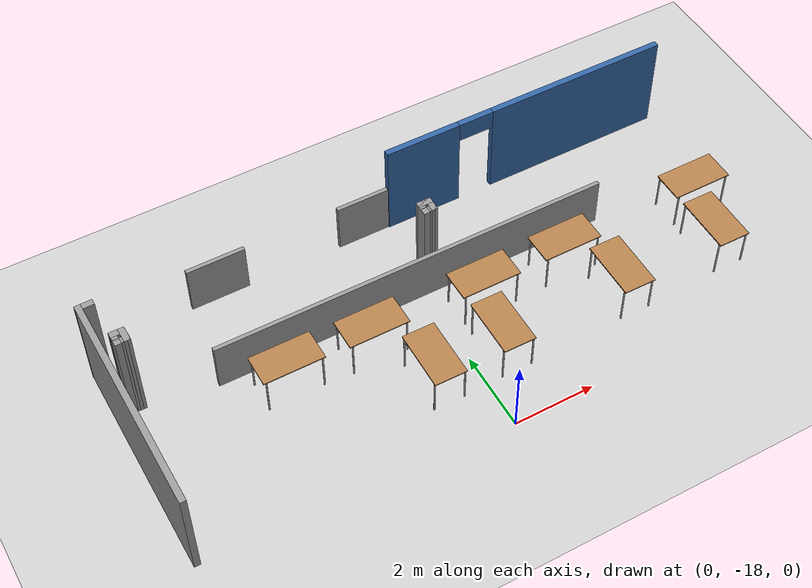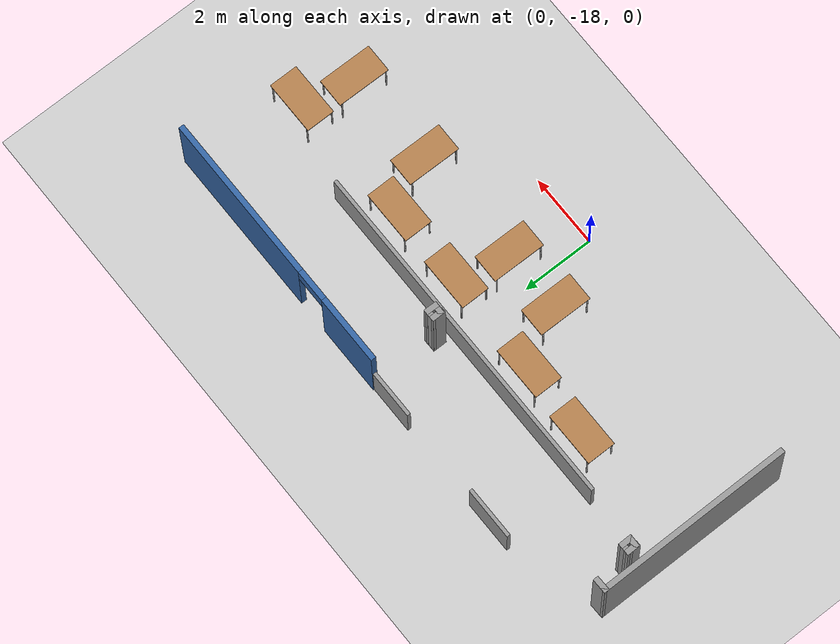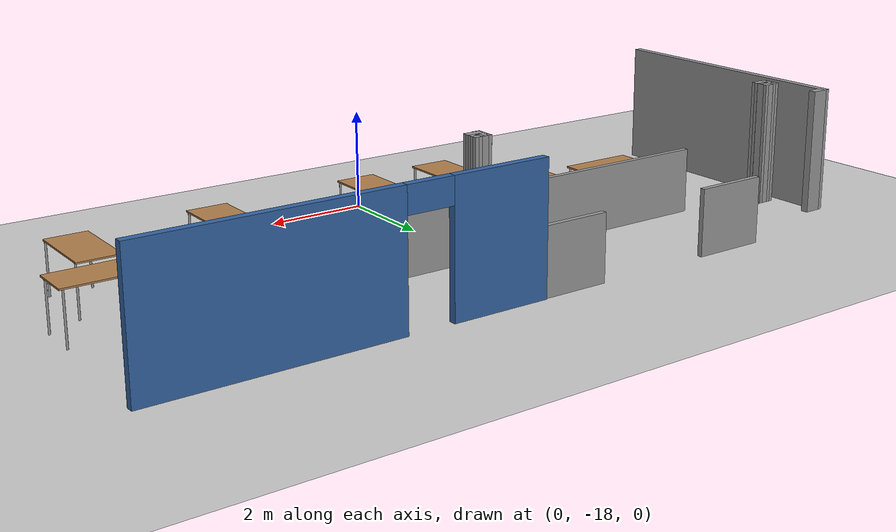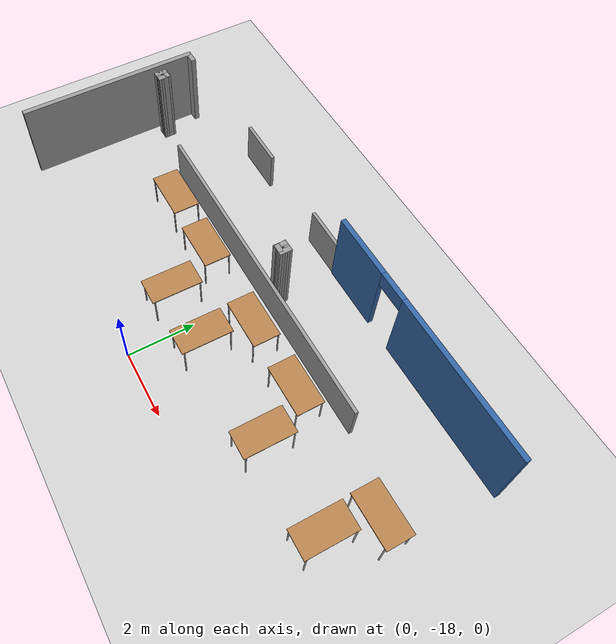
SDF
<sdf version="1.7">
 <world name="default">
  <model name="ground_plane">
   <static>1</static>
   <link name="link">
    <collision name="collision">
     <geometry><plane><normal>0 0 1</normal><size>100 100</size></plane></geometry>
     <surface>
      <contact><collide_bitmask>65535</collide_bitmask></contact>
      <friction><ode><mu>100</mu><mu2>50</mu2></ode></friction>
     </surface>
    </collision>
    <visual name="visual">
     <cast_shadows>0</cast_shadows>
     <geometry><plane><normal>0 0 1</normal><size>100 100</size></plane></geometry>
     <material>
      <script><uri>file://media/materials/scripts/gazebo.material</uri><name>Gazebo/Grey</name></script>
     </material>
    </visual>
   </link>
  </model>
  <model name="office_indoor_centered">
   <pose>8.45773 -9.64315 0 0 -0 0</pose>
   <link name="Wall_100">
    <collision name="Wall_100_Collision">
     <geometry><box><size>0.341623 0.15 2.5</size></box></geometry>
     <pose>0 0 1.25 0 -0 0</pose>
    </collision>
    <visual name="Wall_100_Visual">
     <pose>0 0 1.25 0 -0 0</pose>
     <geometry><box><size>0.341623 0.15 2.5</size></box></geometry>
     <material>
      <script><uri>file://media/materials/scripts/gazebo.material</uri><name>Gazebo/Grey</name></script>
      <ambient>1 1 1 1</ambient>
     </material>
     <meta><layer>0</layer></meta>
    </visual>
    <pose>-8.09905 -3.91466 0 0 -0 3.11175</pose>
   </link>
   <link name="Wall_133">
    <collision name="Wall_133_Collision">
     <geometry><box><size>1.45 0.1 1.3</size></box></geometry>
     <pose>0 0 0.65 0 -0 0</pose>
    </collision>
    <visual name="Wall_133_Visual">
     <pose>0 0 0.65 0 -0 0</pose>
     <geometry><box><size>1.45 0.1 1.3</size></box></geometry>
     <material>
      <script><uri>file://media/materials/scripts/gazebo.material</uri><name>Gazebo/Grey</name></script>
      <ambient>1 1 1 1</ambient>
     </material>
     <meta><layer>0</layer></meta>
    </visual>
    <pose>-12.5537 -1.93985 0 0 -0 0</pose>
   </link>
   <link name="Wall_135">
    <collision name="Wall_135_Collision">
     <geometry><box><size>1.44963 0.1 1.3</size></box></geometry>
     <pose>0 0 0.65 0 -0 0</pose>
    </collision>
    <visual name="Wall_135_Visual">
     <pose>0 0 0.65 0 -0 0</pose>
     <geometry><box><size>1.44963 0.1 1.3</size></box></geometry>
     <material>
      <script><uri>file://media/materials/scripts/gazebo.material</uri><name>Gazebo/Grey</name></script>
      <ambient>1 1 1 1</ambient>
     </material>
     <meta><layer>0</layer></meta>
    </visual>
    <pose>-8.72873 -1.94485 0 0 -0 3.14159</pose>
   </link>
   <link name="Wall_167">
    <collision name="Wall_167_Collision">
     <geometry><box><size>9.95 0.1 1.3</size></box></geometry>
     <pose>0 0 0.65 0 -0 0</pose>
    </collision>
    <visual name="Wall_167_Visual">
     <pose>0 0 0.65 0 -0 0</pose>
     <geometry><box><size>9.95 0.1 1.3</size></box></geometry>
     <material>
      <script><uri>file://media/materials/scripts/gazebo.material</uri><name>Gazebo/Grey</name></script>
      <ambient>1 1 1 1</ambient>
     </material>
     <meta><layer>0</layer></meta>
    </visual>
    <pose>-8.67673 -4.21685 0 0 -0 3.14159</pose>
   </link>
   <link name="Wall_31">
    <collision name="Wall_31_Collision">
     <geometry><box><size>5.5 0.15 2.5</size></box></geometry>
     <pose>0 0 1.25 0 -0 0</pose>
    </collision>
    <visual name="Wall_31_Visual">
     <pose>0 0 1.25 0 -0 0</pose>
     <geometry><box><size>5.5 0.15 2.5</size></box></geometry>
     <material>
      <script><uri>file://media/materials/scripts/gazebo.material</uri><name>Gazebo/Grey</name></script>
      <ambient>1 1 1 1</ambient>
     </material>
     <meta><layer>0</layer></meta>
    </visual>
    <pose>-15.925 -5.37515 0 0 -0 1.5708</pose>
   </link>
   <link name="Wall_34">
    <collision name="Wall_34_Collision">
     <geometry><box><size>0.421671 0.15 2.5</size></box></geometry>
     <pose>0 0 1.25 0 -0 0</pose>
    </collision>
    <visual name="Wall_34_Visual">
     <pose>0 0 1.25 0 -0 0</pose>
     <geometry><box><size>0.421671 0.15 2.5</size></box></geometry>
     <material>
      <script><uri>file://media/materials/scripts/gazebo.material</uri><name>Gazebo/Grey</name></script>
      <ambient>1 1 1 1</ambient>
     </material>
     <meta><layer>0</layer></meta>
    </visual>
    <pose>-15.7892 -2.69755 0 0 -0 0.019104</pose>
   </link>
   <link name="Wall_42">
    <pose>-4.37854 -1.94491 0 0 -0 -1.4e-05</pose>
    <visual name="Wall_42_Visual_0">
     <pose>-2.79066 0 1.25 0 -0 0</pose>
     <geometry><box><size>1.91868 0.15 2.5</size></box></geometry>
     <material>
      <script><uri>file://media/materials/scripts/gazebo.material</uri><name>Gazebo/Grey</name></script>
      <ambient>0.203922 0.396078 0.643137 1</ambient>
     </material>
     <meta><layer>0</layer></meta>
    </visual>
    <collision name="Wall_42_Collision_0">
     <geometry><box><size>1.91868 0.15 2.5</size></box></geometry>
     <pose>-2.79066 0 1.25 0 -0 0</pose>
    </collision>
    <visual name="Wall_42_Visual_1">
     <pose>1.40934 0 1.25 0 -0 0</pose>
     <geometry><box><size>4.68131 0.15 2.5</size></box></geometry>
     <material>
      <script><uri>file://media/materials/scripts/gazebo.material</uri><name>Gazebo/Grey</name></script>
      <ambient>0.203922 0.396078 0.643137 1</ambient>
     </material>
     <meta><layer>0</layer></meta>
    </visual>
    <collision name="Wall_42_Collision_1">
     <geometry><box><size>4.68131 0.15 2.5</size></box></geometry>
     <pose>1.40934 0 1.25 0 -0 0</pose>
    </collision>
    <visual name="Wall_42_Visual_2">
     <pose>-1.38132 0 2.25 0 -0 0</pose>
     <geometry><box><size>0.9 0.15 0.5</size></box></geometry>
     <material>
      <script><uri>file://media/materials/scripts/gazebo.material</uri><name>Gazebo/Grey</name></script>
      <ambient>0.203922 0.396078 0.643137 1</ambient>
     </material>
     <meta><layer>0</layer></meta>
    </visual>
    <collision name="Wall_42_Collision_2">
     <geometry><box><size>0.9 0.15 0.5</size></box></geometry>
     <pose>-1.38132 0 2.25 0 -0 0</pose>
    </collision>
   </link>
   <link name="Wall_92">
    <collision name="Wall_92_Collision">
     <geometry><box><size>0.382989 0.15 2.5</size></box></geometry>
     <pose>0 0 1.25 0 -0 0</pose>
    </collision>
    <visual name="Wall_92_Visual">
     <pose>0 0 1.25 0 -0 0</pose>
     <geometry><box><size>0.382989 0.15 2.5</size></box></geometry>
     <material>
      <script><uri>file://media/materials/scripts/gazebo.material</uri><name>Gazebo/Grey</name></script>
      <ambient>1 1 1 1</ambient>
     </material>
     <meta><layer>0</layer></meta>
    </visual>
    <pose>-15.559 -3.82104 0 0 -0 1.58307</pose>
   </link>
   <link name="Wall_93">
    <collision name="Wall_93_Collision">
     <geometry><box><size>0.358695 0.15 2.5</size></box></geometry>
     <pose>0 0 1.25 0 -0 0</pose>
    </collision>
    <visual name="Wall_93_Visual">
     <pose>0 0 1.25 0 -0 0</pose>
     <geometry><box><size>0.358695 0.15 2.5</size></box></geometry>
     <material>
      <script><uri>file://media/materials/scripts/gazebo.material</uri><name>Gazebo/Grey</name></script>
      <ambient>1 1 1 1</ambient>
     </material>
     <meta><layer>0</layer></meta>
    </visual>
    <pose>-15.4561 -3.70383 0 0 -0 0.006849</pose>
   </link>
   <link name="Wall_94">
    <collision name="Wall_94_Collision">
     <geometry><box><size>0.37729 0.15 2.5</size></box></geometry>
     <pose>0 0 1.25 0 -0 0</pose>
    </collision>
    <visual name="Wall_94_Visual">
     <pose>0 0 1.25 0 -0 0</pose>
     <geometry><box><size>0.37729 0.15 2.5</size></box></geometry>
     <material>
      <script><uri>file://media/materials/scripts/gazebo.material</uri><name>Gazebo/Grey</name></script>
      <ambient>1 1 1 1</ambient>
     </material>
     <meta><layer>0</layer></meta>
    </visual>
    <pose>-15.3503 -3.81675 0 0 -0 -1.55822</pose>
   </link>
   <link name="Wall_95">
    <collision name="Wall_95_Collision">
     <geometry><box><size>0.341585 0.15 2.5</size></box></geometry>
     <pose>0 0 1.25 0 -0 0</pose>
    </collision>
    <visual name="Wall_95_Visual">
     <pose>0 0 1.25 0 -0 0</pose>
     <geometry><box><size>0.341585 0.15 2.5</size></box></geometry>
     <material>
      <script><uri>file://media/materials/scripts/gazebo.material</uri><name>Gazebo/Grey</name></script>
      <ambient>1 1 1 1</ambient>
     </material>
     <meta><layer>0</layer></meta>
    </visual>
    <pose>-15.4446 -3.92824 0 0 -0 3.11921</pose>
   </link>
   <link name="Wall_97">
    <collision name="Wall_97_Collision">
     <geometry><box><size>0.380131 0.15 2.5</size></box></geometry>
     <pose>0 0 1.25 0 -0 0</pose>
    </collision>
    <visual name="Wall_97_Visual">
     <pose>0 0 1.25 0 -0 0</pose>
     <geometry><box><size>0.380131 0.15 2.5</size></box></geometry>
     <material>
      <script><uri>file://media/materials/scripts/gazebo.material</uri><name>Gazebo/Grey</name></script>
      <ambient>1 1 1 1</ambient>
     </material>
     <meta><layer>0</layer></meta>
    </visual>
    <pose>-8.21054 -3.81818 0 0 -0 1.5708</pose>
   </link>
   <link name="Wall_98">
    <collision name="Wall_98_Collision">
     <geometry><box><size>0.361568 0.15 2.5</size></box></geometry>
     <pose>0 0 1.25 0 -0 0</pose>
    </collision>
    <visual name="Wall_98_Visual">
     <pose>0 0 1.25 0 -0 0</pose>
     <geometry><box><size>0.361568 0.15 2.5</size></box></geometry>
     <material>
      <script><uri>file://media/materials/scripts/gazebo.material</uri><name>Gazebo/Grey</name></script>
      <ambient>1 1 1 1</ambient>
     </material>
     <meta><layer>0</layer></meta>
    </visual>
    <pose>-8.10476 -3.70168 0 0 -0 0.013513</pose>
   </link>
   <link name="Wall_99">
    <collision name="Wall_99_Collision">
     <geometry><box><size>0.367384 0.15 2.5</size></box></geometry>
     <pose>0 0 1.25 0 -0 0</pose>
    </collision>
    <visual name="Wall_99_Visual">
     <pose>0 0 1.25 0 -0 0</pose>
     <geometry><box><size>0.367384 0.15 2.5</size></box></geometry>
     <material>
      <script><uri>file://media/materials/scripts/gazebo.material</uri><name>Gazebo/Grey</name></script>
      <ambient>1 1 1 1</ambient>
     </material>
     <meta><layer>0</layer></meta>
    </visual>
    <pose>-8.00113 -3.80889 0 0 -0 -1.59053</pose>
   </link>
   <static>1</static>
  </model>
  <model name="table_2">
   <static>1</static>
   <link name="link">
    <collision name="surface">
     <pose>0 0 1 0 -0 0</pose>
     <geometry><box><size>1.5 0.8 0.03</size></box></geometry>
     <surface><friction><ode><mu>0.6</mu><mu2>0.6</mu2></ode></friction></surface>
    </collision>
    <visual name="visual1">
     <pose>0 0 1 0 -0 0</pose>
     <geometry><box><size>1.5 0.8 0.03</size></box></geometry>
     <material>
      <script><uri>file://media/materials/scripts/gazebo.material</uri><name>Gazebo/Wood</name></script>
     </material>
    </visual>
    <collision name="collision_front_left_leg">
     <pose>0.68 0.38 0.5 0 -0 0</pose>
     <geometry><cylinder><radius>0.02</radius><length>1</length></cylinder></geometry>
    </collision>
    <visual name="visual_front_left_leg">
     <pose>0.68 0.38 0.5 0 -0 0</pose>
     <geometry><cylinder><radius>0.02</radius><length>1</length></cylinder></geometry>
     <material>
      <script><uri>file://media/materials/scripts/gazebo.material</uri><name>Gazebo/Grey</name></script>
     </material>
    </visual>
    <collision name="collision_front_right_leg">
     <pose>0.68 -0.38 0.5 0 -0 0</pose>
     <geometry><cylinder><radius>0.02</radius><length>1</length></cylinder></geometry>
    </collision>
    <visual name="visual_front_right_leg">
     <pose>0.68 -0.38 0.5 0 -0 0</pose>
     <geometry><cylinder><radius>0.02</radius><length>1</length></cylinder></geometry>
     <material>
      <script><uri>file://media/materials/scripts/gazebo.material</uri><name>Gazebo/Grey</name></script>
     </material>
    </visual>
    <collision name="collision_back_right_leg">
     <pose>-0.68 -0.38 0.5 0 -0 0</pose>
     <geometry><cylinder><radius>0.02</radius><length>1</length></cylinder></geometry>
    </collision>
    <visual name="visual_back_right_leg">
     <pose>-0.68 -0.38 0.5 0 -0 0</pose>
     <geometry><cylinder><radius>0.02</radius><length>1</length></cylinder></geometry>
     <material>
      <script><uri>file://media/materials/scripts/gazebo.material</uri><name>Gazebo/Grey</name></script>
     </material>
    </visual>
    <collision name="collision_back_left_leg">
     <pose>-0.68 0.38 0.5 0 -0 0</pose>
     <geometry><cylinder><radius>0.02</radius><length>1</length></cylinder></geometry>
    </collision>
    <visual name="visual_back_left_leg">
     <pose>-0.68 0.38 0.5 0 -0 0</pose>
     <geometry><cylinder><radius>0.02</radius><length>1</length></cylinder></geometry>
     <material>
      <script><uri>file://media/materials/scripts/gazebo.material</uri><name>Gazebo/Grey</name></script>
     </material>
    </visual>
   </link>
   <pose>-3.82224 -14.6388 0 0 -0 0</pose>
  </model>
  <model name="table_3">
   <static>1</static>
   <link name="link">
    <collision name="surface">
     <pose>0 0 1 0 -0 0</pose>
     <geometry><box><size>1.5 0.8 0.03</size></box></geometry>
     <surface><friction><ode><mu>0.6</mu><mu2>0.6</mu2></ode></friction></surface>
    </collision>
    <visual name="visual1">
     <pose>0 0 1 0 -0 0</pose>
     <geometry><box><size>1.5 0.8 0.03</size></box></geometry>
     <material>
      <script><uri>file://media/materials/scripts/gazebo.material</uri><name>Gazebo/Wood</name></script>
     </material>
    </visual>
    <collision name="collision_front_left_leg">
     <pose>0.68 0.38 0.5 0 -0 0</pose>
     <geometry><cylinder><radius>0.02</radius><length>1</length></cylinder></geometry>
    </collision>
    <visual name="visual_front_left_leg">
     <pose>0.68 0.38 0.5 0 -0 0</pose>
     <geometry><cylinder><radius>0.02</radius><length>1</length></cylinder></geometry>
     <material>
      <script><uri>file://media/materials/scripts/gazebo.material</uri><name>Gazebo/Grey</name></script>
     </material>
    </visual>
    <collision name="collision_front_right_leg">
     <pose>0.68 -0.38 0.5 0 -0 0</pose>
     <geometry><cylinder><radius>0.02</radius><length>1</length></cylinder></geometry>
    </collision>
    <visual name="visual_front_right_leg">
     <pose>0.68 -0.38 0.5 0 -0 0</pose>
     <geometry><cylinder><radius>0.02</radius><length>1</length></cylinder></geometry>
     <material>
      <script><uri>file://media/materials/scripts/gazebo.material</uri><name>Gazebo/Grey</name></script>
     </material>
    </visual>
    <collision name="collision_back_right_leg">
     <pose>-0.68 -0.38 0.5 0 -0 0</pose>
     <geometry><cylinder><radius>0.02</radius><length>1</length></cylinder></geometry>
    </collision>
    <visual name="visual_back_right_leg">
     <pose>-0.68 -0.38 0.5 0 -0 0</pose>
     <geometry><cylinder><radius>0.02</radius><length>1</length></cylinder></geometry>
     <material>
      <script><uri>file://media/materials/scripts/gazebo.material</uri><name>Gazebo/Grey</name></script>
     </material>
    </visual>
    <collision name="collision_back_left_leg">
     <pose>-0.68 0.38 0.5 0 -0 0</pose>
     <geometry><cylinder><radius>0.02</radius><length>1</length></cylinder></geometry>
    </collision>
    <visual name="visual_back_left_leg">
     <pose>-0.68 0.38 0.5 0 -0 0</pose>
     <geometry><cylinder><radius>0.02</radius><length>1</length></cylinder></geometry>
     <material>
      <script><uri>file://media/materials/scripts/gazebo.material</uri><name>Gazebo/Grey</name></script>
     </material>
    </visual>
   </link>
   <pose>-1.75125 -14.685 0 0 -0 0</pose>
  </model>
  <model name="table_4">
   <static>1</static>
   <link name="link">
    <collision name="surface">
     <pose>0 0 1 0 -0 0</pose>
     <geometry><box><size>1.5 0.8 0.03</size></box></geometry>
     <surface><friction><ode><mu>0.6</mu><mu2>0.6</mu2></ode></friction></surface>
    </collision>
    <visual name="visual1">
     <pose>0 0 1 0 -0 0</pose>
     <geometry><box><size>1.5 0.8 0.03</size></box></geometry>
     <material>
      <script><uri>file://media/materials/scripts/gazebo.material</uri><name>Gazebo/Wood</name></script>
     </material>
    </visual>
    <collision name="collision_front_left_leg">
     <pose>0.68 0.38 0.5 0 -0 0</pose>
     <geometry><cylinder><radius>0.02</radius><length>1</length></cylinder></geometry>
    </collision>
    <visual name="visual_front_left_leg">
     <pose>0.68 0.38 0.5 0 -0 0</pose>
     <geometry><cylinder><radius>0.02</radius><length>1</length></cylinder></geometry>
     <material>
      <script><uri>file://media/materials/scripts/gazebo.material</uri><name>Gazebo/Grey</name></script>
     </material>
    </visual>
    <collision name="collision_front_right_leg">
     <pose>0.68 -0.38 0.5 0 -0 0</pose>
     <geometry><cylinder><radius>0.02</radius><length>1</length></cylinder></geometry>
    </collision>
    <visual name="visual_front_right_leg">
     <pose>0.68 -0.38 0.5 0 -0 0</pose>
     <geometry><cylinder><radius>0.02</radius><length>1</length></cylinder></geometry>
     <material>
      <script><uri>file://media/materials/scripts/gazebo.material</uri><name>Gazebo/Grey</name></script>
     </material>
    </visual>
    <collision name="collision_back_right_leg">
     <pose>-0.68 -0.38 0.5 0 -0 0</pose>
     <geometry><cylinder><radius>0.02</radius><length>1</length></cylinder></geometry>
    </collision>
    <visual name="visual_back_right_leg">
     <pose>-0.68 -0.38 0.5 0 -0 0</pose>
     <geometry><cylinder><radius>0.02</radius><length>1</length></cylinder></geometry>
     <material>
      <script><uri>file://media/materials/scripts/gazebo.material</uri><name>Gazebo/Grey</name></script>
     </material>
    </visual>
    <collision name="collision_back_left_leg">
     <pose>-0.68 0.38 0.5 0 -0 0</pose>
     <geometry><cylinder><radius>0.02</radius><length>1</length></cylinder></geometry>
    </collision>
    <visual name="visual_back_left_leg">
     <pose>-0.68 0.38 0.5 0 -0 0</pose>
     <geometry><cylinder><radius>0.02</radius><length>1</length></cylinder></geometry>
     <material>
      <script><uri>file://media/materials/scripts/gazebo.material</uri><name>Gazebo/Grey</name></script>
     </material>
    </visual>
   </link>
   <pose>1.10768 -14.7151 0 0 -0 0</pose>
  </model>
  <model name="table_5">
   <static>1</static>
   <link name="link">
    <collision name="surface">
     <pose>0 0 1 0 -0 0</pose>
     <geometry><box><size>1.5 0.8 0.03</size></box></geometry>
     <surface><friction><ode><mu>0.6</mu><mu2>0.6</mu2></ode></friction></surface>
    </collision>
    <visual name="visual1">
     <pose>0 0 1 0 -0 0</pose>
     <geometry><box><size>1.5 0.8 0.03</size></box></geometry>
     <material>
      <script><uri>file://media/materials/scripts/gazebo.material</uri><name>Gazebo/Wood</name></script>
     </material>
    </visual>
    <collision name="collision_front_left_leg">
     <pose>0.68 0.38 0.5 0 -0 0</pose>
     <geometry><cylinder><radius>0.02</radius><length>1</length></cylinder></geometry>
    </collision>
    <visual name="visual_front_left_leg">
     <pose>0.68 0.38 0.5 0 -0 0</pose>
     <geometry><cylinder><radius>0.02</radius><length>1</length></cylinder></geometry>
     <material>
      <script><uri>file://media/materials/scripts/gazebo.material</uri><name>Gazebo/Grey</name></script>
     </material>
    </visual>
    <collision name="collision_front_right_leg">
     <pose>0.68 -0.38 0.5 0 -0 0</pose>
     <geometry><cylinder><radius>0.02</radius><length>1</length></cylinder></geometry>
    </collision>
    <visual name="visual_front_right_leg">
     <pose>0.68 -0.38 0.5 0 -0 0</pose>
     <geometry><cylinder><radius>0.02</radius><length>1</length></cylinder></geometry>
     <material>
      <script><uri>file://media/materials/scripts/gazebo.material</uri><name>Gazebo/Grey</name></script>
     </material>
    </visual>
    <collision name="collision_back_right_leg">
     <pose>-0.68 -0.38 0.5 0 -0 0</pose>
     <geometry><cylinder><radius>0.02</radius><length>1</length></cylinder></geometry>
    </collision>
    <visual name="visual_back_right_leg">
     <pose>-0.68 -0.38 0.5 0 -0 0</pose>
     <geometry><cylinder><radius>0.02</radius><length>1</length></cylinder></geometry>
     <material>
      <script><uri>file://media/materials/scripts/gazebo.material</uri><name>Gazebo/Grey</name></script>
     </material>
    </visual>
    <collision name="collision_back_left_leg">
     <pose>-0.68 0.38 0.5 0 -0 0</pose>
     <geometry><cylinder><radius>0.02</radius><length>1</length></cylinder></geometry>
    </collision>
    <visual name="visual_back_left_leg">
     <pose>-0.68 0.38 0.5 0 -0 0</pose>
     <geometry><cylinder><radius>0.02</radius><length>1</length></cylinder></geometry>
     <material>
      <script><uri>file://media/materials/scripts/gazebo.material</uri><name>Gazebo/Grey</name></script>
     </material>
    </visual>
   </link>
   <pose>3.29963 -14.6952 0 0 -0 0</pose>
  </model>
  <model name="table_6">
   <static>1</static>
   <link name="link">
    <collision name="surface">
     <pose>0 0 1 0 -0 0</pose>
     <geometry><box><size>1.5 0.8 0.03</size></box></geometry>
     <surface><friction><ode><mu>0.6</mu><mu2>0.6</mu2></ode></friction></surface>
    </collision>
    <visual name="visual1">
     <pose>0 0 1 0 -0 0</pose>
     <geometry><box><size>1.5 0.8 0.03</size></box></geometry>
     <material>
      <script><uri>file://media/materials/scripts/gazebo.material</uri><name>Gazebo/Wood</name></script>
     </material>
    </visual>
    <collision name="collision_front_left_leg">
     <pose>0.68 0.38 0.5 0 -0 0</pose>
     <geometry><cylinder><radius>0.02</radius><length>1</length></cylinder></geometry>
    </collision>
    <visual name="visual_front_left_leg">
     <pose>0.68 0.38 0.5 0 -0 0</pose>
     <geometry><cylinder><radius>0.02</radius><length>1</length></cylinder></geometry>
     <material>
      <script><uri>file://media/materials/scripts/gazebo.material</uri><name>Gazebo/Grey</name></script>
     </material>
    </visual>
    <collision name="collision_front_right_leg">
     <pose>0.68 -0.38 0.5 0 -0 0</pose>
     <geometry><cylinder><radius>0.02</radius><length>1</length></cylinder></geometry>
    </collision>
    <visual name="visual_front_right_leg">
     <pose>0.68 -0.38 0.5 0 -0 0</pose>
     <geometry><cylinder><radius>0.02</radius><length>1</length></cylinder></geometry>
     <material>
      <script><uri>file://media/materials/scripts/gazebo.material</uri><name>Gazebo/Grey</name></script>
     </material>
    </visual>
    <collision name="collision_back_right_leg">
     <pose>-0.68 -0.38 0.5 0 -0 0</pose>
     <geometry><cylinder><radius>0.02</radius><length>1</length></cylinder></geometry>
    </collision>
    <visual name="visual_back_right_leg">
     <pose>-0.68 -0.38 0.5 0 -0 0</pose>
     <geometry><cylinder><radius>0.02</radius><length>1</length></cylinder></geometry>
     <material>
      <script><uri>file://media/materials/scripts/gazebo.material</uri><name>Gazebo/Grey</name></script>
     </material>
    </visual>
    <collision name="collision_back_left_leg">
     <pose>-0.68 0.38 0.5 0 -0 0</pose>
     <geometry><cylinder><radius>0.02</radius><length>1</length></cylinder></geometry>
    </collision>
    <visual name="visual_back_left_leg">
     <pose>-0.68 0.38 0.5 0 -0 0</pose>
     <geometry><cylinder><radius>0.02</radius><length>1</length></cylinder></geometry>
     <material>
      <script><uri>file://media/materials/scripts/gazebo.material</uri><name>Gazebo/Grey</name></script>
     </material>
    </visual>
   </link>
   <pose>7.01892 -14.5885 0 0 -0 0</pose>
  </model>
  <model name="table_26_clone_16">
   <static>1</static>
   <link name="link">
    <collision name="surface">
     <pose>0 0 1 0 -0 0</pose>
     <geometry><box><size>1.5 0.8 0.03</size></box></geometry>
     <surface><friction><ode><mu>0.6</mu><mu2>0.6</mu2></ode></friction></surface>
    </collision>
    <visual name="visual1">
     <pose>0 0 1 0 -0 0</pose>
     <geometry><box><size>1.5 0.8 0.03</size></box></geometry>
     <material>
      <script><uri>file://media/materials/scripts/gazebo.material</uri><name>Gazebo/Wood</name></script>
     </material>
    </visual>
    <collision name="collision_front_left_leg">
     <pose>0.68 0.38 0.5 0 -0 0</pose>
     <geometry><cylinder><radius>0.02</radius><length>1</length></cylinder></geometry>
    </collision>
    <visual name="visual_front_left_leg">
     <pose>0.68 0.38 0.5 0 -0 0</pose>
     <geometry><cylinder><radius>0.02</radius><length>1</length></cylinder></geometry>
     <material>
      <script><uri>file://media/materials/scripts/gazebo.material</uri><name>Gazebo/Grey</name></script>
     </material>
    </visual>
    <collision name="collision_front_right_leg">
     <pose>0.68 -0.38 0.5 0 -0 0</pose>
     <geometry><cylinder><radius>0.02</radius><length>1</length></cylinder></geometry>
    </collision>
    <visual name="visual_front_right_leg">
     <pose>0.68 -0.38 0.5 0 -0 0</pose>
     <geometry><cylinder><radius>0.02</radius><length>1</length></cylinder></geometry>
     <material>
      <script><uri>file://media/materials/scripts/gazebo.material</uri><name>Gazebo/Grey</name></script>
     </material>
    </visual>
    <collision name="collision_back_right_leg">
     <pose>-0.68 -0.38 0.5 0 -0 0</pose>
     <geometry><cylinder><radius>0.02</radius><length>1</length></cylinder></geometry>
    </collision>
    <visual name="visual_back_right_leg">
     <pose>-0.68 -0.38 0.5 0 -0 0</pose>
     <geometry><cylinder><radius>0.02</radius><length>1</length></cylinder></geometry>
     <material>
      <script><uri>file://media/materials/scripts/gazebo.material</uri><name>Gazebo/Grey</name></script>
     </material>
    </visual>
    <collision name="collision_back_left_leg">
     <pose>-0.68 0.38 0.5 0 -0 0</pose>
     <geometry><cylinder><radius>0.02</radius><length>1</length></cylinder></geometry>
    </collision>
    <visual name="visual_back_left_leg">
     <pose>-0.68 0.38 0.5 0 -0 0</pose>
     <geometry><cylinder><radius>0.02</radius><length>1</length></cylinder></geometry>
     <material>
      <script><uri>file://media/materials/scripts/gazebo.material</uri><name>Gazebo/Grey</name></script>
     </material>
    </visual>
   </link>
   <pose>6.68534 -15.96 0 0 0 -1.57974</pose>
  </model>
  <model name="table_26_clone_19">
   <static>1</static>
   <link name="link">
    <collision name="surface">
     <pose>0 0 1 0 -0 0</pose>
     <geometry><box><size>1.5 0.8 0.03</size></box></geometry>
     <surface><friction><ode><mu>0.6</mu><mu2>0.6</mu2></ode></friction></surface>
    </collision>
    <visual name="visual1">
     <pose>0 0 1 0 -0 0</pose>
     <geometry><box><size>1.5 0.8 0.03</size></box></geometry>
     <material>
      <script><uri>file://media/materials/scripts/gazebo.material</uri><name>Gazebo/Wood</name></script>
     </material>
    </visual>
    <collision name="collision_front_left_leg">
     <pose>0.68 0.38 0.5 0 -0 0</pose>
     <geometry><cylinder><radius>0.02</radius><length>1</length></cylinder></geometry>
    </collision>
    <visual name="visual_front_left_leg">
     <pose>0.68 0.38 0.5 0 -0 0</pose>
     <geometry><cylinder><radius>0.02</radius><length>1</length></cylinder></geometry>
     <material>
      <script><uri>file://media/materials/scripts/gazebo.material</uri><name>Gazebo/Grey</name></script>
     </material>
    </visual>
    <collision name="collision_front_right_leg">
     <pose>0.68 -0.38 0.5 0 -0 0</pose>
     <geometry><cylinder><radius>0.02</radius><length>1</length></cylinder></geometry>
    </collision>
    <visual name="visual_front_right_leg">
     <pose>0.68 -0.38 0.5 0 -0 0</pose>
     <geometry><cylinder><radius>0.02</radius><length>1</length></cylinder></geometry>
     <material>
      <script><uri>file://media/materials/scripts/gazebo.material</uri><name>Gazebo/Grey</name></script>
     </material>
    </visual>
    <collision name="collision_back_right_leg">
     <pose>-0.68 -0.38 0.5 0 -0 0</pose>
     <geometry><cylinder><radius>0.02</radius><length>1</length></cylinder></geometry>
    </collision>
    <visual name="visual_back_right_leg">
     <pose>-0.68 -0.38 0.5 0 -0 0</pose>
     <geometry><cylinder><radius>0.02</radius><length>1</length></cylinder></geometry>
     <material>
      <script><uri>file://media/materials/scripts/gazebo.material</uri><name>Gazebo/Grey</name></script>
     </material>
    </visual>
    <collision name="collision_back_left_leg">
     <pose>-0.68 0.38 0.5 0 -0 0</pose>
     <geometry><cylinder><radius>0.02</radius><length>1</length></cylinder></geometry>
    </collision>
    <visual name="visual_back_left_leg">
     <pose>-0.68 0.38 0.5 0 -0 0</pose>
     <geometry><cylinder><radius>0.02</radius><length>1</length></cylinder></geometry>
     <material>
      <script><uri>file://media/materials/scripts/gazebo.material</uri><name>Gazebo/Grey</name></script>
     </material>
    </visual>
   </link>
   <pose>4.0033 -16.0331 0 0 0 -1.57974</pose>
  </model>
  <model name="table_26_clone_20">
   <static>1</static>
   <link name="link">
    <collision name="surface">
     <pose>0 0 1 0 -0 0</pose>
     <geometry><box><size>1.5 0.8 0.03</size></box></geometry>
     <surface><friction><ode><mu>0.6</mu><mu2>0.6</mu2></ode></friction></surface>
    </collision>
    <visual name="visual1">
     <pose>0 0 1 0 -0 0</pose>
     <geometry><box><size>1.5 0.8 0.03</size></box></geometry>
     <material>
      <script><uri>file://media/materials/scripts/gazebo.material</uri><name>Gazebo/Wood</name></script>
     </material>
    </visual>
    <collision name="collision_front_left_leg">
     <pose>0.68 0.38 0.5 0 -0 0</pose>
     <geometry><cylinder><radius>0.02</radius><length>1</length></cylinder></geometry>
    </collision>
    <visual name="visual_front_left_leg">
     <pose>0.68 0.38 0.5 0 -0 0</pose>
     <geometry><cylinder><radius>0.02</radius><length>1</length></cylinder></geometry>
     <material>
      <script><uri>file://media/materials/scripts/gazebo.material</uri><name>Gazebo/Grey</name></script>
     </material>
    </visual>
    <collision name="collision_front_right_leg">
     <pose>0.68 -0.38 0.5 0 -0 0</pose>
     <geometry><cylinder><radius>0.02</radius><length>1</length></cylinder></geometry>
    </collision>
    <visual name="visual_front_right_leg">
     <pose>0.68 -0.38 0.5 0 -0 0</pose>
     <geometry><cylinder><radius>0.02</radius><length>1</length></cylinder></geometry>
     <material>
      <script><uri>file://media/materials/scripts/gazebo.material</uri><name>Gazebo/Grey</name></script>
     </material>
    </visual>
    <collision name="collision_back_right_leg">
     <pose>-0.68 -0.38 0.5 0 -0 0</pose>
     <geometry><cylinder><radius>0.02</radius><length>1</length></cylinder></geometry>
    </collision>
    <visual name="visual_back_right_leg">
     <pose>-0.68 -0.38 0.5 0 -0 0</pose>
     <geometry><cylinder><radius>0.02</radius><length>1</length></cylinder></geometry>
     <material>
      <script><uri>file://media/materials/scripts/gazebo.material</uri><name>Gazebo/Grey</name></script>
     </material>
    </visual>
    <collision name="collision_back_left_leg">
     <pose>-0.68 0.38 0.5 0 -0 0</pose>
     <geometry><cylinder><radius>0.02</radius><length>1</length></cylinder></geometry>
    </collision>
    <visual name="visual_back_left_leg">
     <pose>-0.68 0.38 0.5 0 -0 0</pose>
     <geometry><cylinder><radius>0.02</radius><length>1</length></cylinder></geometry>
     <material>
      <script><uri>file://media/materials/scripts/gazebo.material</uri><name>Gazebo/Grey</name></script>
     </material>
    </visual>
   </link>
   <pose>0.785889 -16.1027 0 0 0 -1.57974</pose>
  </model>
  <model name="table_26_clone_23">
   <static>1</static>
   <link name="link">
    <collision name="surface">
     <pose>0 0 1 0 -0 0</pose>
     <geometry><box><size>1.5 0.8 0.03</size></box></geometry>
     <surface><friction><ode><mu>0.6</mu><mu2>0.6</mu2></ode></friction></surface>
    </collision>
    <visual name="visual1">
     <pose>0 0 1 0 -0 0</pose>
     <geometry><box><size>1.5 0.8 0.03</size></box></geometry>
     <material>
      <script><uri>file://media/materials/scripts/gazebo.material</uri><name>Gazebo/Wood</name></script>
     </material>
    </visual>
    <collision name="collision_front_left_leg">
     <pose>0.68 0.38 0.5 0 -0 0</pose>
     <geometry><cylinder><radius>0.02</radius><length>1</length></cylinder></geometry>
    </collision>
    <visual name="visual_front_left_leg">
     <pose>0.68 0.38 0.5 0 -0 0</pose>
     <geometry><cylinder><radius>0.02</radius><length>1</length></cylinder></geometry>
     <material>
      <script><uri>file://media/materials/scripts/gazebo.material</uri><name>Gazebo/Grey</name></script>
     </material>
    </visual>
    <collision name="collision_front_right_leg">
     <pose>0.68 -0.38 0.5 0 -0 0</pose>
     <geometry><cylinder><radius>0.02</radius><length>1</length></cylinder></geometry>
    </collision>
    <visual name="visual_front_right_leg">
     <pose>0.68 -0.38 0.5 0 -0 0</pose>
     <geometry><cylinder><radius>0.02</radius><length>1</length></cylinder></geometry>
     <material>
      <script><uri>file://media/materials/scripts/gazebo.material</uri><name>Gazebo/Grey</name></script>
     </material>
    </visual>
    <collision name="collision_back_right_leg">
     <pose>-0.68 -0.38 0.5 0 -0 0</pose>
     <geometry><cylinder><radius>0.02</radius><length>1</length></cylinder></geometry>
    </collision>
    <visual name="visual_back_right_leg">
     <pose>-0.68 -0.38 0.5 0 -0 0</pose>
     <geometry><cylinder><radius>0.02</radius><length>1</length></cylinder></geometry>
     <material>
      <script><uri>file://media/materials/scripts/gazebo.material</uri><name>Gazebo/Grey</name></script>
     </material>
    </visual>
    <collision name="collision_back_left_leg">
     <pose>-0.68 0.38 0.5 0 -0 0</pose>
     <geometry><cylinder><radius>0.02</radius><length>1</length></cylinder></geometry>
    </collision>
    <visual name="visual_back_left_leg">
     <pose>-0.68 0.38 0.5 0 -0 0</pose>
     <geometry><cylinder><radius>0.02</radius><length>1</length></cylinder></geometry>
     <material>
      <script><uri>file://media/materials/scripts/gazebo.material</uri><name>Gazebo/Grey</name></script>
     </material>
    </visual>
   </link>
   <pose>-0.974973 -16.1285 0 0 0 -1.57974</pose>
  </model>
 </world>
</sdf>
